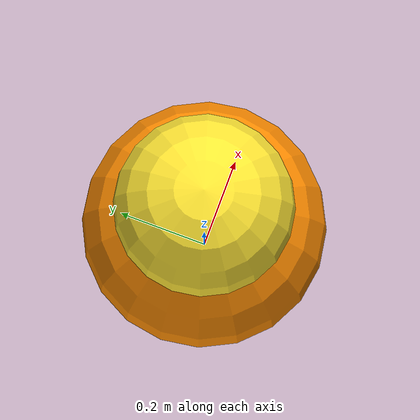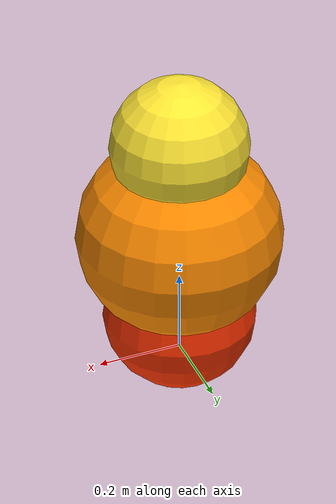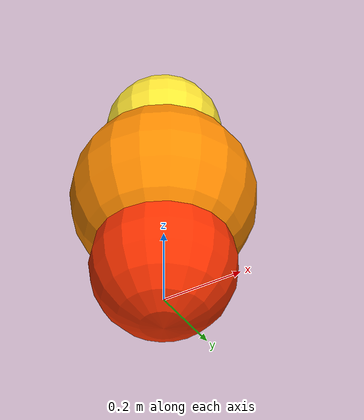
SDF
<?xml version="1.0" ?>
<sdf version="1.7">
  <model name="fire">
    <static>true</static>

    <link name="link">
      <visual name="flame_base">
        <pose>0 0 0.10 0 0 0</pose>
        <geometry>
          <sphere>
            <radius>0.18</radius>
          </sphere>
        </geometry>
        <material>
          <ambient>1 0.15 0 1</ambient>
          <diffuse>1 0.2 0 1</diffuse>
          <emissive>1 0.2 0 1</emissive>
        </material>
      </visual>

      <visual name="flame_middle">
        <pose>0 0 0.32 0 0 0</pose>
        <geometry>
          <sphere>
            <radius>0.24</radius>
          </sphere>
        </geometry>
        <material>
          <ambient>1 0.4 0 1</ambient>
          <diffuse>1 0.55 0 1</diffuse>
          <emissive>1 0.55 0 1</emissive>
        </material>
      </visual>

      <visual name="flame_tip">
        <pose>0 0 0.56 0 0 0</pose>
        <geometry>
          <sphere>
            <radius>0.16</radius>
          </sphere>
        </geometry>
        <material>
          <ambient>1 0.8 0.1 1</ambient>
          <diffuse>1 0.9 0.2 1</diffuse>
          <emissive>1 0.9 0.2 1</emissive>
        </material>
      </visual>

      <collision name="collision">
        <geometry>
          <cylinder>
            <radius>0.12</radius>
            <length>0.6</length>
          </cylinder>
        </geometry>
      </collision>
    </link>
  </model>
</sdf>
